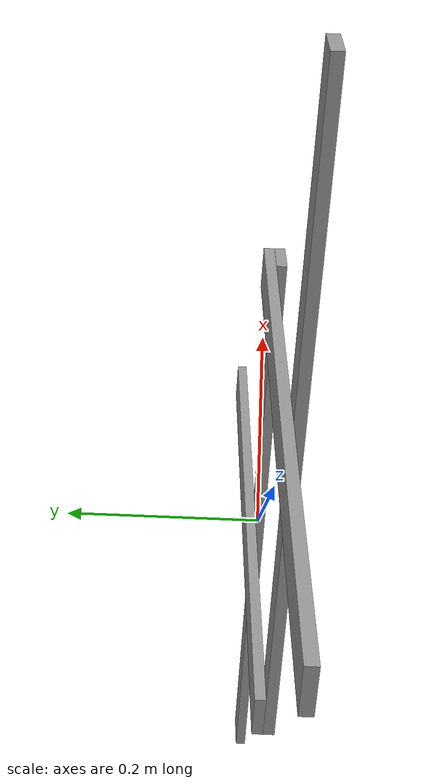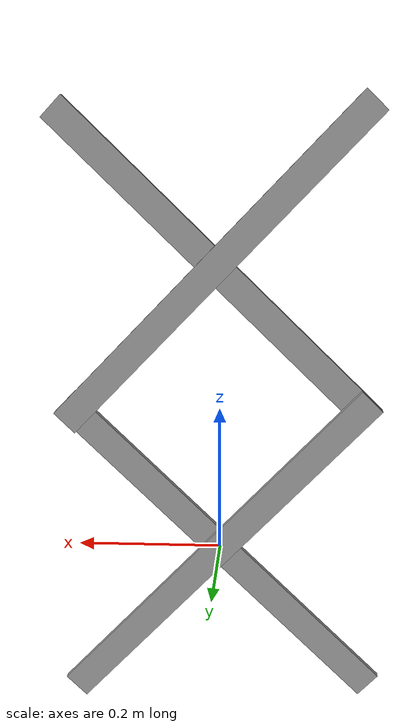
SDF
<?xml version='1.0'?>
<sdf version='1.6'>
  <model name='scissor7'>
      <link name='link_0'>
        <inertial>
          <mass>1</mass>
          <inertia>
            <ixx>0.166667</ixx>
            <ixy>0</ixy>
            <ixz>0</ixz>
            <iyy>0.166667</iyy>
            <iyz>0</iyz>
            <izz>0.166667</izz>
          </inertia>
          <pose frame=''>0 0 0 0 -0 0</pose>
        </inertial>
        <pose frame=''>0.000209 -0 0 0 -0 0</pose>
        <gravity>1</gravity>
        <self_collide>0</self_collide>
        <kinematic>0</kinematic>
        <enable_wind>0</enable_wind>
        <visual name='visual'>
          <pose frame=''>0 0 0 0 -0 0</pose>
          <geometry>
            <box>
              <size>0.6 0.01 0.04</size>
            </box>
          </geometry>
          <material>
            <lighting>1</lighting>
            <script>
              <uri>file://media/materials/scripts/gazebo.material</uri>
              <name>Gazebo/Grey</name>
            </script>
            <shader type='vertex'>
              <normal_map>__default__</normal_map>
            </shader>
            <ambient>0.3 0.3 0.3 1</ambient>
            <diffuse>0.7 0.7 0.7 1</diffuse>
            <specular>0.01 0.01 0.01 1</specular>
            <emissive>0 0 0 1</emissive>
          </material>
          <transparency>0</transparency>
          <cast_shadows>1</cast_shadows>
        </visual>
        <collision name='collision'>
          <laser_retro>0</laser_retro>
          <max_contacts>10</max_contacts>
          <pose frame=''>0 0 0 0 -0 0</pose>
          <geometry>
            <box>
              <size>0.6 0.01 0.04</size>
            </box>
          </geometry>
          <surface>
            <friction>
              <ode>
                <mu>1</mu>
                <mu2>1</mu2>
                <fdir1>0 0 0</fdir1>
                <slip1>0</slip1>
                <slip2>0</slip2>
              </ode>
              <torsional>
                <coefficient>1</coefficient>
                <patch_radius>0</patch_radius>
                <surface_radius>0</surface_radius>
                <use_patch_radius>1</use_patch_radius>
                <ode>
                  <slip>0</slip>
                </ode>
              </torsional>
            </friction>
            <bounce>
              <restitution_coefficient>0</restitution_coefficient>
              <threshold>1e+06</threshold>
            </bounce>
            <contact>
              <collide_without_contact>0</collide_without_contact>
              <collide_without_contact_bitmask>1</collide_without_contact_bitmask>
              <collide_bitmask>1</collide_bitmask>
              <ode>
                <soft_cfm>0</soft_cfm>
                <soft_erp>0.2</soft_erp>
                <kp>1e+13</kp>
                <kd>1</kd>
                <max_vel>0.01</max_vel>
                <min_depth>0</min_depth>
              </ode>
              <bullet>
                <split_impulse>1</split_impulse>
                <split_impulse_penetration_threshold>-0.01</split_impulse_penetration_threshold>
                <soft_cfm>0</soft_cfm>
                <soft_erp>0.2</soft_erp>
                <kp>1e+13</kp>
                <kd>1</kd>
              </bullet>
            </contact>
          </surface>
        </collision>
      </link>
      <link name='link_0_clone'>
        <inertial>
          <mass>1</mass>
          <inertia>
            <ixx>0.166667</ixx>
            <ixy>0</ixy>
            <ixz>0</ixz>
            <iyy>0.166667</iyy>
            <iyz>0</iyz>
            <izz>0.166667</izz>
          </inertia>
          <pose frame=''>0 0 0 0 -0 0</pose>
        </inertial>
        <pose frame=''>0 0.01 0 0 1.5707 0</pose>
        <gravity>1</gravity>
        <self_collide>0</self_collide>
        <kinematic>0</kinematic>
        <enable_wind>0</enable_wind>
        <visual name='visual'>
          <pose frame=''>0 0 0 0 -0 0</pose>
          <geometry>
            <box>
              <size>0.6 0.01 0.04</size>
            </box>
          </geometry>
          <material>
            <lighting>1</lighting>
            <script>
              <uri>file://media/materials/scripts/gazebo.material</uri>
              <name>Gazebo/Grey</name>
            </script>
            <shader type='vertex'>
              <normal_map>__default__</normal_map>
            </shader>
            <ambient>0.3 0.3 0.3 1</ambient>
            <diffuse>0.7 0.7 0.7 1</diffuse>
            <specular>0.01 0.01 0.01 1</specular>
            <emissive>0 0 0 1</emissive>
          </material>
          <transparency>0</transparency>
          <cast_shadows>1</cast_shadows>
        </visual>
        <collision name='collision'>
          <laser_retro>0</laser_retro>
          <max_contacts>10</max_contacts>
          <pose frame=''>0 0 0 0 -0 0</pose>
          <geometry>
            <box>
              <size>0.6 0.01 0.04</size>
            </box>
          </geometry>
          <surface>
            <friction>
              <ode>
                <mu>1</mu>
                <mu2>1</mu2>
                <fdir1>0 0 0</fdir1>
                <slip1>0</slip1>
                <slip2>0</slip2>
              </ode>
              <torsional>
                <coefficient>1</coefficient>
                <patch_radius>0</patch_radius>
                <surface_radius>0</surface_radius>
                <use_patch_radius>1</use_patch_radius>
                <ode>
                  <slip>0</slip>
                </ode>
              </torsional>
            </friction>
            <bounce>
              <restitution_coefficient>0</restitution_coefficient>
              <threshold>1e+06</threshold>
            </bounce>
            <contact>
              <collide_without_contact>0</collide_without_contact>
              <collide_without_contact_bitmask>1</collide_without_contact_bitmask>
              <collide_bitmask>1</collide_bitmask>
              <ode>
                <soft_cfm>0</soft_cfm>
                <soft_erp>0.2</soft_erp>
                <kp>1e+13</kp>
                <kd>1</kd>
                <max_vel>0.01</max_vel>
                <min_depth>0</min_depth>
              </ode>
              <bullet>
                <split_impulse>1</split_impulse>
                <split_impulse_penetration_threshold>-0.01</split_impulse_penetration_threshold>
                <soft_cfm>0</soft_cfm>
                <soft_erp>0.2</soft_erp>
                <kp>1e+13</kp>
                <kd>1</kd>
              </bullet>
            </contact>
          </surface>
        </collision>
      </link>
      <link name='link_0_clone_0'>
        <inertial>
          <mass>1</mass>
          <inertia>
            <ixx>0.166667</ixx>
            <ixy>0</ixy>
            <ixz>0</ixz>
            <iyy>0.166667</iyy>
            <iyz>0</iyz>
            <izz>0.166667</izz>
          </inertia>
          <pose frame=''>0 0 0 0 -0 0</pose>
        </inertial>
        <pose frame=''>0.28 -0 0.28 0 -0 0</pose>
        <gravity>1</gravity>
        <self_collide>0</self_collide>
        <kinematic>0</kinematic>
        <enable_wind>0</enable_wind>
        <visual name='visual'>
          <pose frame=''>0 0 0 0 -0 0</pose>
          <geometry>
            <box>
              <size>0.6 0.01 0.04</size>
            </box>
          </geometry>
          <material>
            <lighting>1</lighting>
            <script>
              <uri>file://media/materials/scripts/gazebo.material</uri>
              <name>Gazebo/Grey</name>
            </script>
            <shader type='vertex'>
              <normal_map>__default__</normal_map>
            </shader>
            <ambient>0.3 0.3 0.3 1</ambient>
            <diffuse>0.7 0.7 0.7 1</diffuse>
            <specular>0.01 0.01 0.01 1</specular>
            <emissive>0 0 0 1</emissive>
          </material>
          <transparency>0</transparency>
          <cast_shadows>1</cast_shadows>
        </visual>
        <collision name='collision'>
          <laser_retro>0</laser_retro>
          <max_contacts>10</max_contacts>
          <pose frame=''>0 0 0 0 -0 0</pose>
          <geometry>
            <box>
              <size>0.6 0.01 0.04</size>
            </box>
          </geometry>
          <surface>
            <friction>
              <ode>
                <mu>1</mu>
                <mu2>1</mu2>
                <fdir1>0 0 0</fdir1>
                <slip1>0</slip1>
                <slip2>0</slip2>
              </ode>
              <torsional>
                <coefficient>1</coefficient>
                <patch_radius>0</patch_radius>
                <surface_radius>0</surface_radius>
                <use_patch_radius>1</use_patch_radius>
                <ode>
                  <slip>0</slip>
                </ode>
              </torsional>
            </friction>
            <bounce>
              <restitution_coefficient>0</restitution_coefficient>
              <threshold>1e+06</threshold>
            </bounce>
            <contact>
              <collide_without_contact>0</collide_without_contact>
              <collide_without_contact_bitmask>1</collide_without_contact_bitmask>
              <collide_bitmask>1</collide_bitmask>
              <ode>
                <soft_cfm>0</soft_cfm>
                <soft_erp>0.2</soft_erp>
                <kp>1e+13</kp>
                <kd>1</kd>
                <max_vel>0.01</max_vel>
                <min_depth>0</min_depth>
              </ode>
              <bullet>
                <split_impulse>1</split_impulse>
                <split_impulse_penetration_threshold>-0.01</split_impulse_penetration_threshold>
                <soft_cfm>0</soft_cfm>
                <soft_erp>0.2</soft_erp>
                <kp>1e+13</kp>
                <kd>1</kd>
              </bullet>
            </contact>
          </surface>
        </collision>
      </link>
      <link name='link_0_clone_clone'>
        <inertial>
          <mass>1</mass>
          <inertia>
            <ixx>0.166667</ixx>
            <ixy>0</ixy>
            <ixz>0</ixz>
            <iyy>0.166667</iyy>
            <iyz>0</iyz>
            <izz>0.166667</izz>
          </inertia>
          <pose frame=''>0 0 0 0 -0 0</pose>
        </inertial>
        <pose frame=''>0.28 0.01 0.28 0 1.5707 0</pose>
        <gravity>1</gravity>
        <self_collide>0</self_collide>
        <kinematic>0</kinematic>
        <enable_wind>0</enable_wind>
        <visual name='visual'>
          <pose frame=''>0 0 0 0 -0 0</pose>
          <geometry>
            <box>
              <size>0.6 0.01 0.04</size>
            </box>
          </geometry>
          <material>
            <lighting>1</lighting>
            <script>
              <uri>file://media/materials/scripts/gazebo.material</uri>
              <name>Gazebo/Grey</name>
            </script>
            <shader type='vertex'>
              <normal_map>__default__</normal_map>
            </shader>
            <ambient>0.3 0.3 0.3 1</ambient>
            <diffuse>0.7 0.7 0.7 1</diffuse>
            <specular>0.01 0.01 0.01 1</specular>
            <emissive>0 0 0 1</emissive>
          </material>
          <transparency>0</transparency>
          <cast_shadows>1</cast_shadows>
        </visual>
        <collision name='collision'>
          <laser_retro>0</laser_retro>
          <max_contacts>10</max_contacts>
          <pose frame=''>0 0 0 0 -0 0</pose>
          <geometry>
            <box>
              <size>0.6 0.01 0.04</size>
            </box>
          </geometry>
          <surface>
            <friction>
              <ode>
                <mu>1</mu>
                <mu2>1</mu2>
                <fdir1>0 0 0</fdir1>
                <slip1>0</slip1>
                <slip2>0</slip2>
              </ode>
              <torsional>
                <coefficient>1</coefficient>
                <patch_radius>0</patch_radius>
                <surface_radius>0</surface_radius>
                <use_patch_radius>1</use_patch_radius>
                <ode>
                  <slip>0</slip>
                </ode>
              </torsional>
            </friction>
            <bounce>
              <restitution_coefficient>0</restitution_coefficient>
              <threshold>1e+06</threshold>
            </bounce>
            <contact>
              <collide_without_contact>0</collide_without_contact>
              <collide_without_contact_bitmask>1</collide_without_contact_bitmask>
              <collide_bitmask>1</collide_bitmask>
              <ode>
                <soft_cfm>0</soft_cfm>
                <soft_erp>0.2</soft_erp>
                <kp>1e+13</kp>
                <kd>1</kd>
                <max_vel>0.01</max_vel>
                <min_depth>0</min_depth>
              </ode>
              <bullet>
                <split_impulse>1</split_impulse>
                <split_impulse_penetration_threshold>-0.01</split_impulse_penetration_threshold>
                <soft_cfm>0</soft_cfm>
                <soft_erp>0.2</soft_erp>
                <kp>1e+13</kp>
                <kd>1</kd>
              </bullet>
            </contact>
          </surface>
        </collision>
      </link>
      <joint name='link_0_JOINT_2' type='revolute'>
        <parent>link_0</parent>
        <child>link_0_clone</child>
        <pose frame=''>0 0 0 0 -0 0</pose>
        <axis>
          <xyz>0 1 0</xyz>
          <use_parent_model_frame>0</use_parent_model_frame>
          <limit>
            <lower>-1.79769e+308</lower>
            <upper>1.79769e+308</upper>
            <effort>-1</effort>
            <velocity>-1</velocity>
          </limit>
          <dynamics>
            <spring_reference>0</spring_reference>
            <spring_stiffness>0</spring_stiffness>
            <damping>0</damping>
          </dynamics>
        </axis>
        <physics>
          <ode>
            <limit>
              <cfm>0</cfm>
              <erp>0.2</erp>
            </limit>
            <suspension>
              <cfm>0</cfm>
              <erp>0.2</erp>
            </suspension>
          </ode>
        </physics>
      </joint>
      <joint name='link_0_JOINT_4' type='revolute'>
        <parent>link_0</parent>
        <child>link_0_clone_clone</child>
        <pose frame=''>0.28 0 0 0 -0 0</pose>
        <axis>
          <xyz>0 1 0</xyz>
          <use_parent_model_frame>0</use_parent_model_frame>
          <limit>
            <lower>-1.79769e+308</lower>
            <upper>1.79769e+308</upper>
            <effort>-1</effort>
            <velocity>-1</velocity>
          </limit>
          <dynamics>
            <spring_reference>0</spring_reference>
            <spring_stiffness>0</spring_stiffness>
            <damping>0</damping>
          </dynamics>
        </axis>
        <physics>
          <ode>
            <limit>
              <cfm>0</cfm>
              <erp>0.2</erp>
            </limit>
            <suspension>
              <cfm>0</cfm>
              <erp>0.2</erp>
            </suspension>
          </ode>
        </physics>
      </joint>
      <joint name='link_0_clone_0_JOINT_5' type='revolute'>
        <parent>link_0_clone_0</parent>
        <child>link_0_clone_clone</child>
        <pose frame=''>0 0 0 0 -0 0</pose>
        <axis>
          <xyz>0 1 0</xyz>
          <use_parent_model_frame>0</use_parent_model_frame>
          <limit>
            <lower>-1.79769e+308</lower>
            <upper>1.79769e+308</upper>
            <effort>-1</effort>
            <velocity>-1</velocity>
          </limit>
          <dynamics>
            <spring_reference>0</spring_reference>
            <spring_stiffness>0</spring_stiffness>
            <damping>0</damping>
          </dynamics>
        </axis>
        <physics>
          <ode>
            <limit>
              <cfm>0</cfm>
              <erp>0.2</erp>
            </limit>
            <suspension>
              <cfm>0</cfm>
              <erp>0.2</erp>
            </suspension>
          </ode>
        </physics>
      </joint>
      <joint name='link_0_clone_JOINT_3' type='revolute'>
        <parent>link_0_clone</parent>
        <child>link_0_clone_0</child>
        <pose frame=''>-0.28 0 0 0 -0 0</pose>
        <axis>
          <xyz>0 1 0</xyz>
          <use_parent_model_frame>0</use_parent_model_frame>
          <limit>
            <lower>-1.79769e+308</lower>
            <upper>1.79769e+308</upper>
            <effort>-1</effort>
            <velocity>-1</velocity>
          </limit>
          <dynamics>
            <spring_reference>0</spring_reference>
            <spring_stiffness>0</spring_stiffness>
            <damping>0</damping>
          </dynamics>
        </axis>
        <physics>
          <ode>
            <limit>
              <cfm>0</cfm>
              <erp>0.2</erp>
            </limit>
            <suspension>
              <cfm>0</cfm>
              <erp>0.2</erp>
            </suspension>
          </ode>
        </physics>
      </joint>
      <static>0</static>
      <allow_auto_disable>1</allow_auto_disable>
      <pose frame=''>5e-06 5e-06 -0 0 -0.769324 0</pose>
    <static>0</static>
    <allow_auto_disable>1</allow_auto_disable>
  </model>
</sdf>
